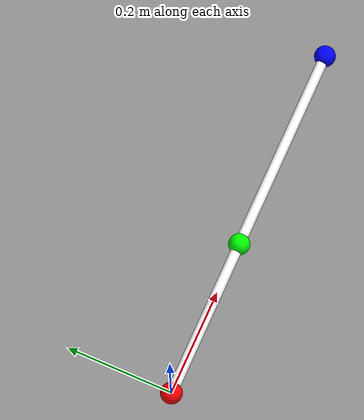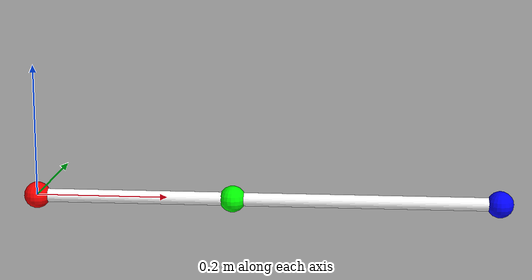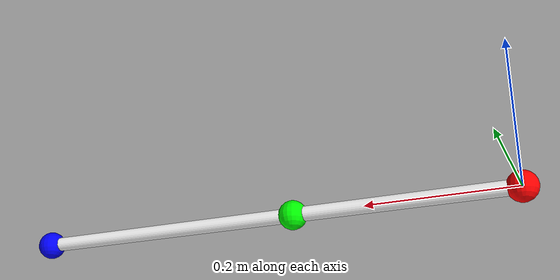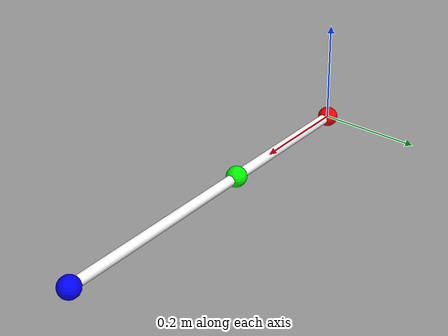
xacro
<?xml version="1.0"?>
<robot xmlns:xacro="http://www.ros.org/wiki/xacro" name="mobile_manipulator">
    <xacro:arg name="initial_positions_file" default="initial_positions.yaml" />

    <!-- Import mobile_manipulator urdf file -->
    <xacro:include filename="$(find simple_9dof_mobile_manipulator)/config/9dof_mobile_manipulator.urdf" />

    <!-- Import control_xacro -->
    <xacro:include filename="mobile_manipulator.ros2_control.xacro" />

    <xacro:mobile_manipulator_ros2_control name="FakeSystem" initial_positions_file="$(arg initial_positions_file)"/>

</robot>

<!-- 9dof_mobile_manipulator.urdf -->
<robot name="mobile_manipulator" xmlns="http://www.ros.org">
<link name="world_base"/>
<link name="base">
  <visual>
    <geometry>
      <sphere radius="0.02"/>
    </geometry>
    <material name="base_color">
      <color rgba="1 0 0 1"/>
    </material>
  </visual>
  <collision>
    <geometry>
      <sphere radius="0.02"/>
    </geometry>
  </collision>
</link>
<link name="base_x"/>
<link name="base_y"/>
<joint name="base_x" type="prismatic">
  <origin xyz="0 0 0" rpy="0 0 0"/>
  <axis xyz="1 0 0"/>
  <parent link="world_base"/>
  <child link="base_x"/>
  <limit effort="10.0" velocity="10.0" lower="-2.0" upper="2.0"/>
</joint>
<joint name="base_y" type="prismatic">
  <origin xyz="0 0 0" rpy="0 0 0"/>
  <axis xyz="0 1 0"/>
  <parent link="base_x"/>
  <child link="base_y"/>
  <limit effort="10.0" velocity="10.0" lower="-2.0" upper="2.0"/>
</joint>
<joint name="base_fixed" type="fixed">
  <origin xyz="0 0 0" rpy="0 0 0"/>
  <parent link="base_y"/>
  <child link="base"/>
</joint>

<link name="elbow">
  <visual>
    <geometry>
      <sphere radius="0.02"/>
    </geometry>
    <material name="elbow_color">
      <color rgba="0 1 0 1"/>
    </material>
  </visual>
  <collision>
    <geometry>
      <sphere radius="0.02"/>
    </geometry>
  </collision>
</link>

<link name="shoulder_lift"/>
<link name="shoulder_pan"/>
<joint name="shoulder_pan" type="revolute">
  <origin xyz="0 0 0" rpy="0 0 0"/>
  <axis xyz="0 0 1"/>
  <parent link="base"/>
  <child link="shoulder_pan"/>
  <limit effort="10.0" velocity="10.0" lower="-6.28" upper="6.28"/>
</joint>
<joint name="shoulder_lift" type="revolute">
  <origin xyz="0 0 0" rpy="0 0 0"/>
  <axis xyz="0 -1 0"/>
  <parent link="shoulder_pan"/>
  <child link="shoulder_lift"/>
  <limit effort="10.0" velocity="10.0" lower="-6.28" upper="6.28"/>
</joint>
<joint name="shoulder_roll" type="revolute">
  <origin xyz="0 0 0" rpy="0 0 0"/>
  <axis xyz="1 0 0"/>
  <parent link="shoulder_lift"/>
  <child link="upperarm"/>
  <limit effort="10.0" velocity="10.0" lower="-6.28" upper="6.28"/>
</joint>

<link name="upperarm">
  <visual>
    <origin xyz="0.15 0 0" rpy="0 1.57 0"/>
    <geometry>
      <cylinder radius="0.01" length="0.3"/>
    </geometry>
    <material name="upperarm_color">
      <color rgba="1 1 1 1"/>
    </material>
  </visual>
  <collision>
    <origin xyz="0.15 0 0" rpy="0 1.57 0"/>
    <geometry>
      <cylinder radius="0.01" length="0.3"/>
    </geometry>
  </collision>
</link>

<joint name="elbow_fixed" type="fixed">
  <origin xyz="0.3 0 0" rpy="0 0 0"/>
  <axis xyz="0 0 0"/>
  <parent link="upperarm"/>
  <child link="elbow"/>
</joint>

<link name="forearm">
  <visual>
    <origin xyz="0.2 0 0" rpy="0 1.57 0"/>
    <geometry>
      <cylinder radius="0.01" length="0.4"/>
    </geometry>
    <material name="forearm_color">
      <color rgba="1 1 1 1"/>
    </material>
  </visual>
  <collision>
    <origin xyz="0.2 0 0" rpy="0 1.57 0"/>
    <geometry>
      <cylinder radius="0.01" length="0.4"/>
    </geometry>
  </collision>
</link>

<link name="eef">
  <visual>
    <geometry>
      <sphere radius="0.02"/>
    </geometry>
    <material name="eef_color">
      <color rgba="0 0 1 1"/>
    </material>
  </visual>
  <collision>
    <geometry>
      <sphere radius="0.02"/>
    </geometry>
  </collision>
</link>

<joint name="elbow_flex" type="revolute">
  <origin xyz="0 0 0" rpy="0 0 0"/>
  <axis xyz="0 1 0"/>
  <parent link="elbow"/>
  <child link="forearm"/>
  <limit effort="10.0" velocity="10.0" lower="-6.28" upper="6.28"/>
</joint>
<joint name="eef_fixed" type="fixed">
  <origin xyz="0.4 0 0" rpy="0 0 0"/>
  <parent link="forearm"/>
  <child link="eef"/>
</joint>

</robot>
